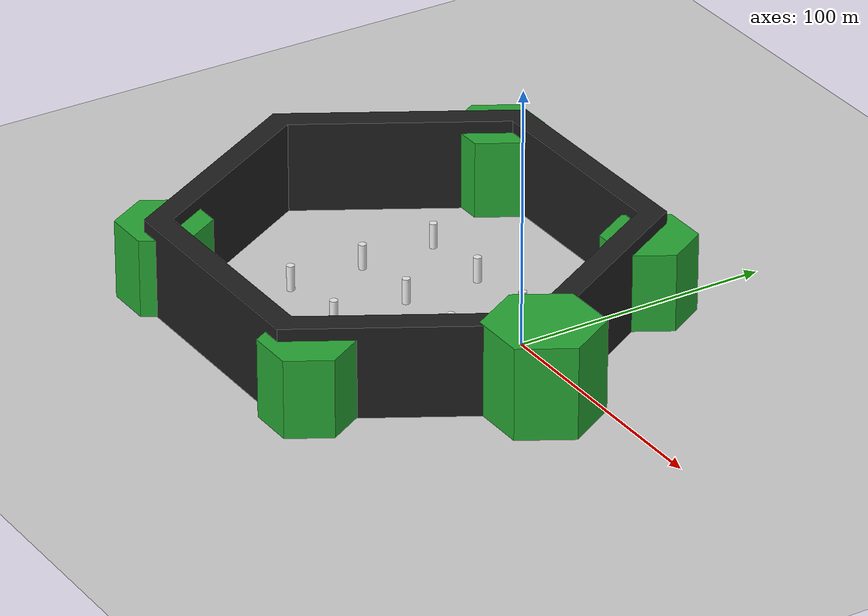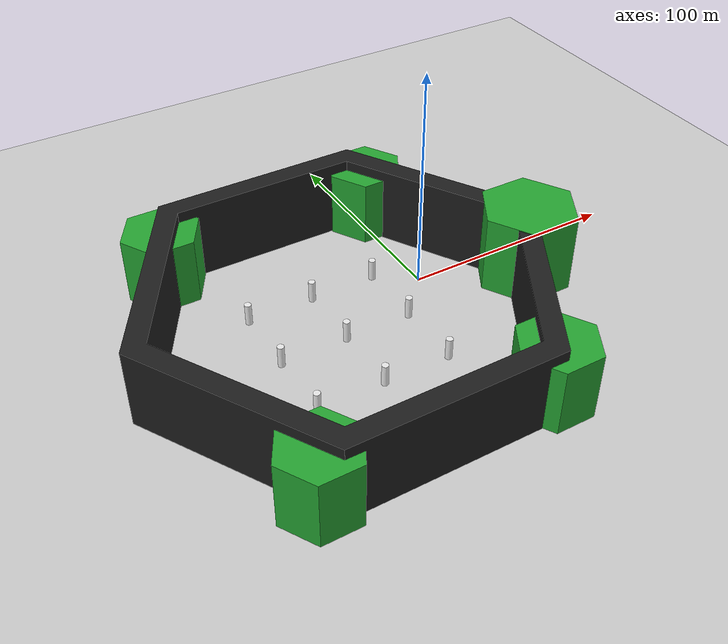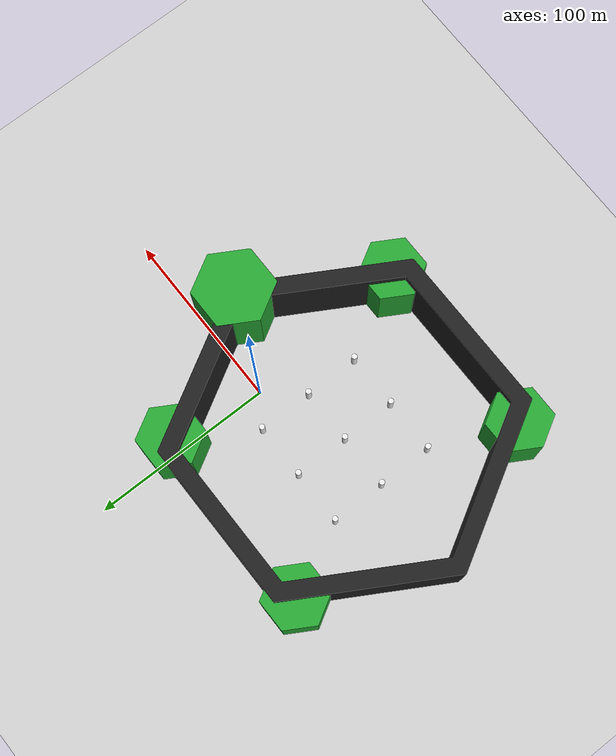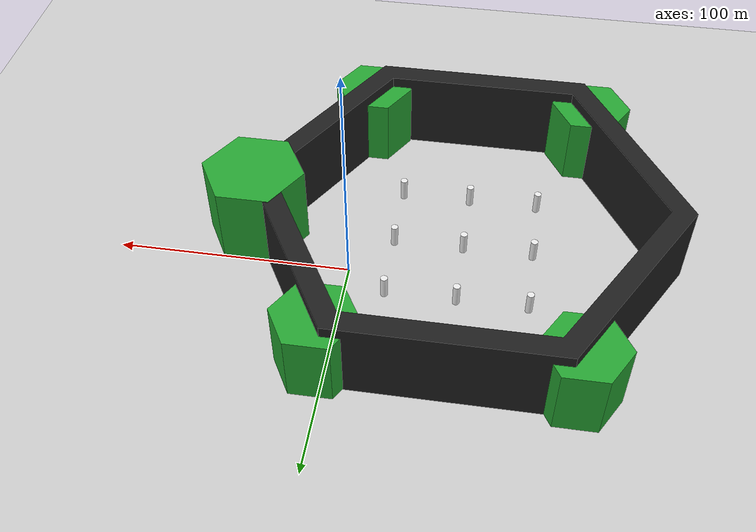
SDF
<sdf version="1.7">
 <world name="default">
  <light name="sun" type="directional">
   <pose>0 0 10 0 -0 0</pose>
   <diffuse>0.8 0.8 0.8 1</diffuse>
   <specular>0.2 0.2 0.2 1</specular>
   <attenuation>
    <range>1000</range>
    <constant>0.9</constant>
    <linear>0.01</linear>
    <quadratic>0.001</quadratic>
   </attenuation>
   <direction>-0.5 0.1 -0.9</direction>
   <spot><inner_angle>0</inner_angle><outer_angle>0</outer_angle><falloff>0</falloff></spot>
  </light>
  <model name="ground_plane">
   <static>1</static>
   <link name="link">
    <collision name="collision">
     <geometry><plane><normal>0 0 1</normal><size>100 100</size></plane></geometry>
     <surface><friction><ode><mu>100</mu><mu2>50</mu2></ode></friction></surface>
    </collision>
    <visual name="visual">
     <cast_shadows>0</cast_shadows>
     <geometry><plane><normal>0 0 1</normal><size>100 100</size></plane></geometry>
     <material>
      <script><uri>file://media/materials/scripts/gazebo.material</uri><name>Gazebo/Grey</name></script>
     </material>
    </visual>
   </link>
  </model>
  <gravity>0 0 -9.8</gravity>
  <magnetic_field>6e-06 2.3e-05 -4.2e-05</magnetic_field>
  <atmosphere type="adiabatic"/>
  <physics type="ode">
   <max_step_size>0.001</max_step_size>
   <real_time_factor>1</real_time_factor>
   <real_time_update_rate>1000</real_time_update_rate>
  </physics>
  <scene><ambient>0.4 0.4 0.4 1</ambient><background>0.7 0.7 0.7 1</background><shadows>1</shadows></scene>
  <spherical_coordinates>
   <surface_model>EARTH_WGS84</surface_model>
   <latitude_deg>0</latitude_deg>
   <longitude_deg>0</longitude_deg>
   <elevation>0</elevation>
   <heading_deg>0</heading_deg>
  </spherical_coordinates>
  <model name="ros_symbol">
   <static>1</static>
   <link name="symbol">
    <collision name="one_one_collision">
     <pose>-30 -30 5 0 -0 0</pose>
     <geometry><cylinder><radius>1.5</radius><length>10</length></cylinder></geometry>
    </collision>
    <visual name="one_one_visual">
     <pose>-30 -30 5 0 -0 0</pose>
     <geometry><cylinder><radius>1.5</radius><length>10</length></cylinder></geometry>
     <material>
      <script><uri>file://media/materials/scripts/gazebo.material</uri><name>Gazebo/White</name></script>
     </material>
    </visual>
    <collision name="one_two_collision">
     <pose>-30 0 5 0 -0 0</pose>
     <geometry><cylinder><radius>1.5</radius><length>10</length></cylinder></geometry>
    </collision>
    <visual name="one_two_visual">
     <pose>-30 0 5 0 -0 0</pose>
     <geometry><cylinder><radius>1.5</radius><length>10</length></cylinder></geometry>
     <material>
      <script><uri>file://media/materials/scripts/gazebo.material</uri><name>Gazebo/White</name></script>
     </material>
    </visual>
    <collision name="one_three_collision">
     <pose>-30 30 5 0 -0 0</pose>
     <geometry><cylinder><radius>1.5</radius><length>10</length></cylinder></geometry>
    </collision>
    <visual name="one_three_visual">
     <pose>-30 30 5 0 -0 0</pose>
     <geometry><cylinder><radius>1.5</radius><length>10</length></cylinder></geometry>
     <material>
      <script><uri>file://media/materials/scripts/gazebo.material</uri><name>Gazebo/White</name></script>
     </material>
    </visual>
    <collision name="two_one_collision">
     <pose>0 -30 5 0 -0 0</pose>
     <geometry><cylinder><radius>1.5</radius><length>10</length></cylinder></geometry>
    </collision>
    <visual name="two_one_visual">
     <pose>0 -30 5 0 -0 0</pose>
     <geometry><cylinder><radius>1.5</radius><length>10</length></cylinder></geometry>
     <material>
      <script><uri>file://media/materials/scripts/gazebo.material</uri><name>Gazebo/White</name></script>
     </material>
    </visual>
    <collision name="two_two_collision">
     <pose>0 0 5 0 -0 0</pose>
     <geometry><cylinder><radius>1.5</radius><length>10</length></cylinder></geometry>
    </collision>
    <visual name="two_two_visual">
     <pose>0 0 5 0 -0 0</pose>
     <geometry><cylinder><radius>1.5</radius><length>10</length></cylinder></geometry>
     <material>
      <script><uri>file://media/materials/scripts/gazebo.material</uri><name>Gazebo/White</name></script>
     </material>
    </visual>
    <collision name="two_three_collision">
     <pose>0 30 5 0 -0 0</pose>
     <geometry><cylinder><radius>1.5</radius><length>10</length></cylinder></geometry>
    </collision>
    <visual name="two_three_visual">
     <pose>0 30 5 0 -0 0</pose>
     <geometry><cylinder><radius>1.5</radius><length>10</length></cylinder></geometry>
     <material>
      <script><uri>file://media/materials/scripts/gazebo.material</uri><name>Gazebo/White</name></script>
     </material>
    </visual>
    <collision name="three_one_collision">
     <pose>30 -30 5 0 -0 0</pose>
     <geometry><cylinder><radius>1.5</radius><length>10</length></cylinder></geometry>
    </collision>
    <visual name="three_one_visual">
     <pose>30 -30 5 0 -0 0</pose>
     <geometry><cylinder><radius>1.5</radius><length>10</length></cylinder></geometry>
     <material>
      <script><uri>file://media/materials/scripts/gazebo.material</uri><name>Gazebo/White</name></script>
     </material>
    </visual>
    <collision name="three_two_collision">
     <pose>30 0 5 0 -0 0</pose>
     <geometry><cylinder><radius>1.5</radius><length>10</length></cylinder></geometry>
    </collision>
    <visual name="three_two_visual">
     <pose>30 0 5 0 -0 0</pose>
     <geometry><cylinder><radius>1.5</radius><length>10</length></cylinder></geometry>
     <material>
      <script><uri>file://media/materials/scripts/gazebo.material</uri><name>Gazebo/White</name></script>
     </material>
    </visual>
    <collision name="three_three_collision">
     <pose>30 30 5 0 -0 0</pose>
     <geometry><cylinder><radius>1.5</radius><length>10</length></cylinder></geometry>
    </collision>
    <visual name="three_three_visual">
     <pose>30 30 5 0 -0 0</pose>
     <geometry><cylinder><radius>1.5</radius><length>10</length></cylinder></geometry>
     <material>
      <script><uri>file://media/materials/scripts/gazebo.material</uri><name>Gazebo/White</name></script>
     </material>
    </visual>
    <collision name="head_collision">
     <pose>90 0 -2.5 0 -0 0</pose>
     <geometry>
      <mesh><uri>model://turtlebot3_world/meshes/hexagon.dae</uri><scale>15 15 15</scale></mesh>
     </geometry>
    </collision>
    <visual name="head_visual">
     <pose>90 0 -2.5 0 -0 0</pose>
     <geometry>
      <mesh><uri>model://turtlebot3_world/meshes/hexagon.dae</uri><scale>15 15 15</scale></mesh>
     </geometry>
     <material>
      <script><uri>file://media/materials/scripts/gazebo.material</uri><name>Gazebo/Green</name></script>
     </material>
    </visual>
    <collision name="left_hand_collision">
     <pose>50 -70 0 0 -0 0</pose>
     <geometry>
      <mesh><uri>model://turtlebot3_world/meshes/hexagon.dae</uri><scale>12 12 12</scale></mesh>
     </geometry>
    </collision>
    <visual name="left_hand_visual">
     <pose>50 -70 0 0 -0 0</pose>
     <geometry>
      <mesh><uri>model://turtlebot3_world/meshes/hexagon.dae</uri><scale>12 12 12</scale></mesh>
     </geometry>
     <material>
      <script><uri>file://media/materials/scripts/gazebo.material</uri><name>Gazebo/Green</name></script>
     </material>
    </visual>
    <collision name="right_hand_collision">
     <pose>50 70 0 0 -0 0</pose>
     <geometry>
      <mesh><uri>model://turtlebot3_world/meshes/hexagon.dae</uri><scale>12 12 12</scale></mesh>
     </geometry>
    </collision>
    <visual name="right_hand_visual">
     <pose>50 70 0 0 -0 0</pose>
     <geometry>
      <mesh><uri>model://turtlebot3_world/meshes/hexagon.dae</uri><scale>12 12 12</scale></mesh>
     </geometry>
     <material>
      <script><uri>file://media/materials/scripts/gazebo.material</uri><name>Gazebo/Green</name></script>
     </material>
    </visual>
    <collision name="left_foot_collision">
     <pose>-50 -70 0 0 -0 0</pose>
     <geometry>
      <mesh><uri>model://turtlebot3_world/meshes/hexagon.dae</uri><scale>12 12 12</scale></mesh>
     </geometry>
    </collision>
    <visual name="left_foot_visual">
     <pose>-50 -70 0 0 -0 0</pose>
     <geometry>
      <mesh><uri>model://turtlebot3_world/meshes/hexagon.dae</uri><scale>12 12 12</scale></mesh>
     </geometry>
     <material>
      <script><uri>file://media/materials/scripts/gazebo.material</uri><name>Gazebo/Green</name></script>
     </material>
    </visual>
    <collision name="right_foot_collision">
     <pose>-50 70 0 0 -0 0</pose>
     <geometry>
      <mesh><uri>model://turtlebot3_world/meshes/hexagon.dae</uri><scale>12 12 12</scale></mesh>
     </geometry>
    </collision>
    <visual name="right_foot_visual">
     <pose>-50 70 0 0 -0 0</pose>
     <geometry>
      <mesh><uri>model://turtlebot3_world/meshes/hexagon.dae</uri><scale>12 12 12</scale></mesh>
     </geometry>
     <material>
      <script><uri>file://media/materials/scripts/gazebo.material</uri><name>Gazebo/Green</name></script>
     </material>
    </visual>
    <collision name="body_collision">
     <pose>0 0 -0.3 0 0 -1.5708</pose>
     <geometry><mesh><uri>model://turtlebot3_world/meshes/wall.dae</uri><scale>7 7 7</scale></mesh></geometry>
    </collision>
    <visual name="body_visual">
     <pose>0 0 -0.3 0 0 -1.5708</pose>
     <geometry><mesh><uri>model://turtlebot3_world/meshes/wall.dae</uri><scale>7 7 7</scale></mesh></geometry>
     <material>
      <script><uri>file://media/materials/scripts/gazebo.material</uri><name>Gazebo/FlatBlack</name></script>
     </material>
    </visual>
   </link>
   <pose>-47.0401 -18.6848 0 0 -0 0</pose>
  </model>
 </world>
</sdf>
